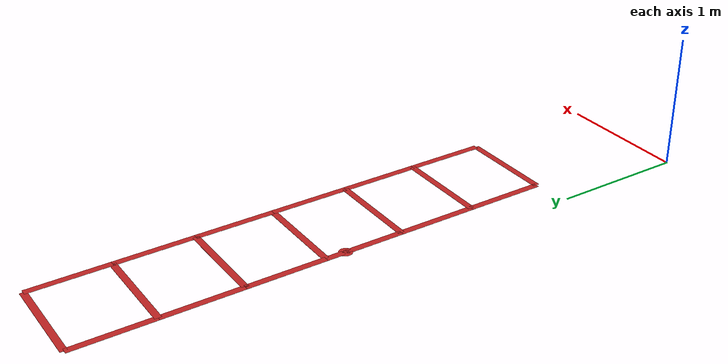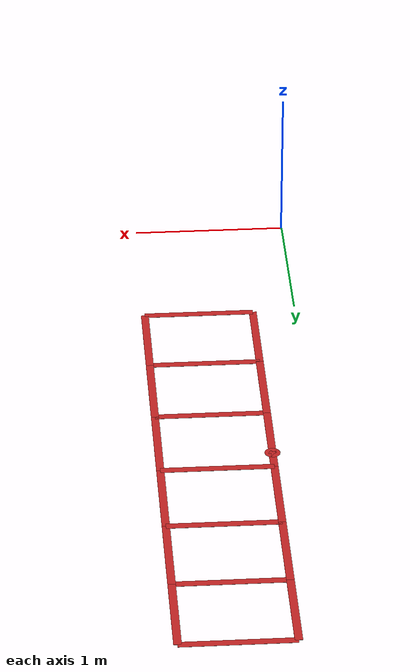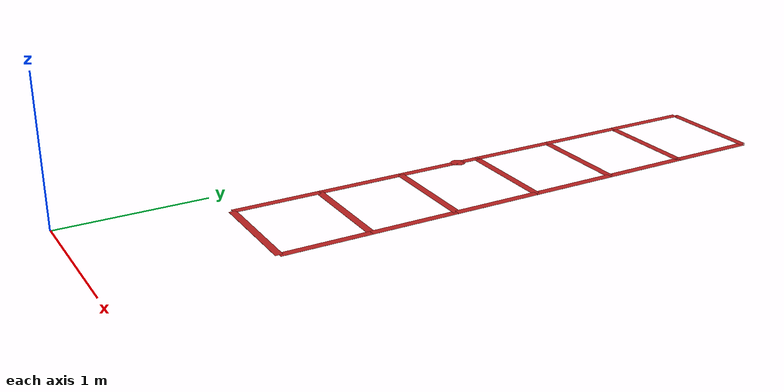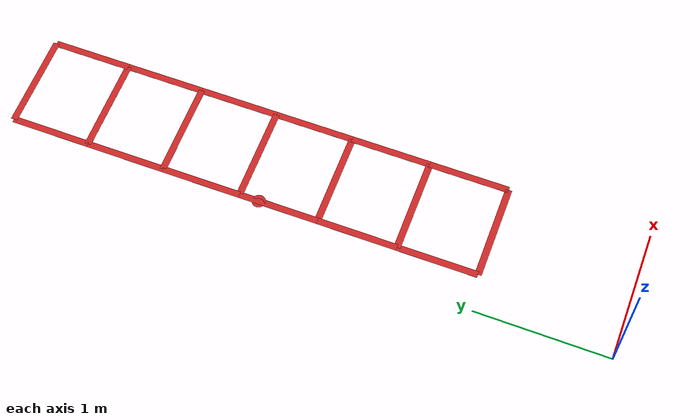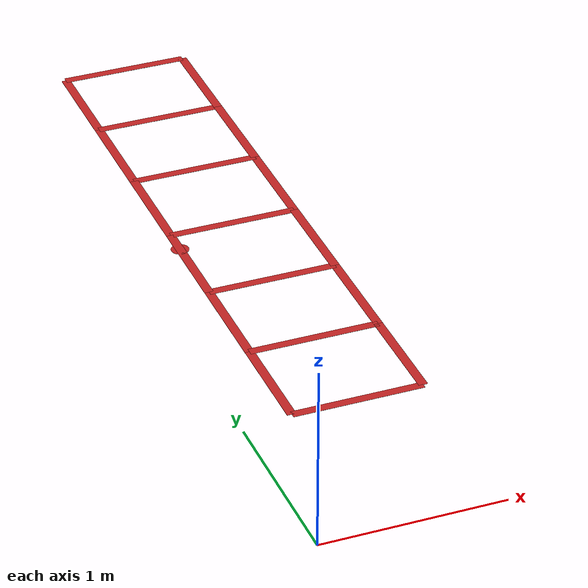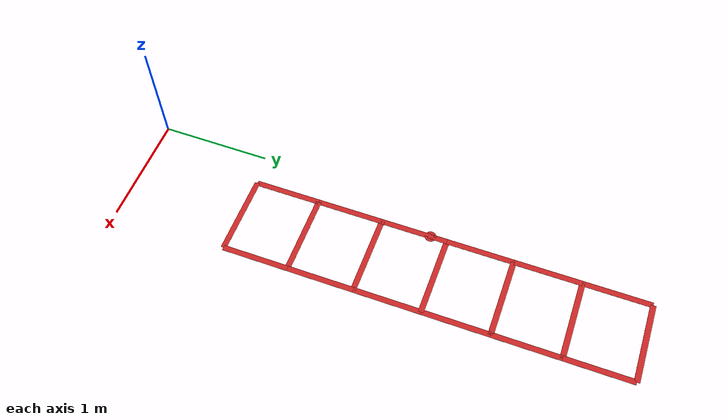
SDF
<sdf version="1.6">
 <world name="square_world">
  <model name="wall588">
   <static>1</static>
   <pose>0.64 1.05 0 0 -0 0</pose>
   <link name="wall_link">
    <inertial><mass>10000</mass></inertial>
    <collision name="wall_collision">
     <geometry><box><size>0.72 0.05 0.001</size></box></geometry>
     <surface><contact><collide_bitmask>2</collide_bitmask></contact></surface>
    </collision>
    <visual name="wall_visual">
     <geometry><box><size>0.72 0.05 0.001</size></box></geometry>
     <material><script><name>Gazebo/Red</name><uri>__default__</uri></script></material>
    </visual>
   </link>
  </model>
  <model name="wall598">
   <static>1</static>
   <pose>0.64 1.65 0 0 -0 0</pose>
   <link name="wall_link">
    <inertial><mass>10000</mass></inertial>
    <collision name="wall_collision">
     <geometry><box><size>0.72 0.05 0.001</size></box></geometry>
     <surface><contact><collide_bitmask>2</collide_bitmask></contact></surface>
    </collision>
    <visual name="wall_visual">
     <geometry><box><size>0.72 0.05 0.001</size></box></geometry>
     <material><script><name>Gazebo/Red</name><uri>__default__</uri></script></material>
    </visual>
   </link>
  </model>
  <model name="wall608">
   <static>1</static>
   <pose>0.28 1.35 0 0 0 -1.5708</pose>
   <link name="wall_link">
    <inertial><mass>10000</mass></inertial>
    <collision name="wall_collision">
     <geometry><box><size>0.6 0.05 0.001</size></box></geometry>
     <surface><contact><collide_bitmask>2</collide_bitmask></contact></surface>
    </collision>
    <visual name="wall_visual">
     <geometry><box><size>0.6 0.05 0.001</size></box></geometry>
     <material><script><name>Gazebo/Red</name><uri>__default__</uri></script></material>
    </visual>
   </link>
  </model>
  <model name="wall618">
   <static>1</static>
   <pose>1 1.35 0 0 0 -1.5708</pose>
   <link name="wall_link">
    <inertial><mass>10000</mass></inertial>
    <collision name="wall_collision">
     <geometry><box><size>0.6 0.05 0.001</size></box></geometry>
     <surface><contact><collide_bitmask>2</collide_bitmask></contact></surface>
    </collision>
    <visual name="wall_visual">
     <geometry><box><size>0.6 0.05 0.001</size></box></geometry>
     <material><script><name>Gazebo/Red</name><uri>__default__</uri></script></material>
    </visual>
   </link>
  </model>
  <model name="wall638">
   <static>1</static>
   <pose>0.64 2.25 0 0 -0 0</pose>
   <link name="wall_link">
    <inertial><mass>10000</mass></inertial>
    <collision name="wall_collision">
     <geometry><box><size>0.72 0.05 0.001</size></box></geometry>
     <surface><contact><collide_bitmask>2</collide_bitmask></contact></surface>
    </collision>
    <visual name="wall_visual">
     <geometry><box><size>0.72 0.05 0.001</size></box></geometry>
     <material><script><name>Gazebo/Red</name><uri>__default__</uri></script></material>
    </visual>
   </link>
  </model>
  <model name="wall648">
   <static>1</static>
   <pose>0.28 1.95 0 0 0 -1.5708</pose>
   <link name="wall_link">
    <inertial><mass>10000</mass></inertial>
    <collision name="wall_collision">
     <geometry><box><size>0.6 0.05 0.001</size></box></geometry>
     <surface><contact><collide_bitmask>2</collide_bitmask></contact></surface>
    </collision>
    <visual name="wall_visual">
     <geometry><box><size>0.6 0.05 0.001</size></box></geometry>
     <material><script><name>Gazebo/Red</name><uri>__default__</uri></script></material>
    </visual>
   </link>
  </model>
  <model name="wall658">
   <static>1</static>
   <pose>1 1.95 0 0 0 -1.5708</pose>
   <link name="wall_link">
    <inertial><mass>10000</mass></inertial>
    <collision name="wall_collision">
     <geometry><box><size>0.6 0.05 0.001</size></box></geometry>
     <surface><contact><collide_bitmask>2</collide_bitmask></contact></surface>
    </collision>
    <visual name="wall_visual">
     <geometry><box><size>0.6 0.05 0.001</size></box></geometry>
     <material><script><name>Gazebo/Red</name><uri>__default__</uri></script></material>
    </visual>
   </link>
  </model>
  <model name="wall678">
   <static>1</static>
   <pose>0.64 2.85 0 0 -0 0</pose>
   <link name="wall_link">
    <inertial><mass>10000</mass></inertial>
    <collision name="wall_collision">
     <geometry><box><size>0.72 0.05 0.001</size></box></geometry>
     <surface><contact><collide_bitmask>2</collide_bitmask></contact></surface>
    </collision>
    <visual name="wall_visual">
     <geometry><box><size>0.72 0.05 0.001</size></box></geometry>
     <material><script><name>Gazebo/Red</name><uri>__default__</uri></script></material>
    </visual>
   </link>
  </model>
  <model name="wall688">
   <static>1</static>
   <pose>0.28 2.55 0 0 0 -1.5708</pose>
   <link name="wall_link">
    <inertial><mass>10000</mass></inertial>
    <collision name="wall_collision">
     <geometry><box><size>0.6 0.05 0.001</size></box></geometry>
     <surface><contact><collide_bitmask>2</collide_bitmask></contact></surface>
    </collision>
    <visual name="wall_visual">
     <geometry><box><size>0.6 0.05 0.001</size></box></geometry>
     <material><script><name>Gazebo/Red</name><uri>__default__</uri></script></material>
    </visual>
   </link>
  </model>
  <model name="wall698">
   <static>1</static>
   <pose>1 2.55 0 0 0 -1.5708</pose>
   <link name="wall_link">
    <inertial><mass>10000</mass></inertial>
    <collision name="wall_collision">
     <geometry><box><size>0.6 0.05 0.001</size></box></geometry>
     <surface><contact><collide_bitmask>2</collide_bitmask></contact></surface>
    </collision>
    <visual name="wall_visual">
     <geometry><box><size>0.6 0.05 0.001</size></box></geometry>
     <material><script><name>Gazebo/Red</name><uri>__default__</uri></script></material>
    </visual>
   </link>
  </model>
  <model name="wall718">
   <static>1</static>
   <pose>0.64 3.45 0 0 -0 0</pose>
   <link name="wall_link">
    <inertial><mass>10000</mass></inertial>
    <collision name="wall_collision">
     <geometry><box><size>0.72 0.05 0.001</size></box></geometry>
     <surface><contact><collide_bitmask>2</collide_bitmask></contact></surface>
    </collision>
    <visual name="wall_visual">
     <geometry><box><size>0.72 0.05 0.001</size></box></geometry>
     <material><script><name>Gazebo/Red</name><uri>__default__</uri></script></material>
    </visual>
   </link>
  </model>
  <model name="wall728">
   <static>1</static>
   <pose>0.28 3.15 0 0 0 -1.5708</pose>
   <link name="wall_link">
    <inertial><mass>10000</mass></inertial>
    <collision name="wall_collision">
     <geometry><box><size>0.6 0.05 0.001</size></box></geometry>
     <surface><contact><collide_bitmask>2</collide_bitmask></contact></surface>
    </collision>
    <visual name="wall_visual">
     <geometry><box><size>0.6 0.05 0.001</size></box></geometry>
     <material><script><name>Gazebo/Red</name><uri>__default__</uri></script></material>
    </visual>
   </link>
  </model>
  <model name="wall738">
   <static>1</static>
   <pose>1 3.15 0 0 0 -1.5708</pose>
   <link name="wall_link">
    <inertial><mass>10000</mass></inertial>
    <collision name="wall_collision">
     <geometry><box><size>0.6 0.05 0.001</size></box></geometry>
     <surface><contact><collide_bitmask>2</collide_bitmask></contact></surface>
    </collision>
    <visual name="wall_visual">
     <geometry><box><size>0.6 0.05 0.001</size></box></geometry>
     <material><script><name>Gazebo/Red</name><uri>__default__</uri></script></material>
    </visual>
   </link>
  </model>
  <model name="wall748">
   <static>1</static>
   <pose>0.64 4.05 0 0 -0 0</pose>
   <link name="wall_link">
    <inertial><mass>10000</mass></inertial>
    <collision name="wall_collision">
     <geometry><box><size>0.72 0.05 0.001</size></box></geometry>
     <surface><contact><collide_bitmask>2</collide_bitmask></contact></surface>
    </collision>
    <visual name="wall_visual">
     <geometry><box><size>0.72 0.05 0.001</size></box></geometry>
     <material><script><name>Gazebo/Red</name><uri>__default__</uri></script></material>
    </visual>
   </link>
  </model>
  <model name="wall758">
   <static>1</static>
   <pose>0.28 3.75 0 0 0 -1.5708</pose>
   <link name="wall_link">
    <inertial><mass>10000</mass></inertial>
    <collision name="wall_collision">
     <geometry><box><size>0.6 0.05 0.001</size></box></geometry>
     <surface><contact><collide_bitmask>2</collide_bitmask></contact></surface>
    </collision>
    <visual name="wall_visual">
     <geometry><box><size>0.6 0.05 0.001</size></box></geometry>
     <material><script><name>Gazebo/Red</name><uri>__default__</uri></script></material>
    </visual>
   </link>
  </model>
  <model name="wall768">
   <static>1</static>
   <pose>1 3.75 0 0 0 -1.5708</pose>
   <link name="wall_link">
    <inertial><mass>10000</mass></inertial>
    <collision name="wall_collision">
     <geometry><box><size>0.6 0.05 0.001</size></box></geometry>
     <surface><contact><collide_bitmask>2</collide_bitmask></contact></surface>
    </collision>
    <visual name="wall_visual">
     <geometry><box><size>0.6 0.05 0.001</size></box></geometry>
     <material><script><name>Gazebo/Red</name><uri>__default__</uri></script></material>
    </visual>
   </link>
  </model>
  <model name="wall778">
   <static>1</static>
   <pose>0.64 4.65 0 0 -0 0</pose>
   <link name="wall_link">
    <inertial><mass>10000</mass></inertial>
    <collision name="wall_collision">
     <geometry><box><size>0.72 0.05 0.001</size></box></geometry>
     <surface><contact><collide_bitmask>2</collide_bitmask></contact></surface>
    </collision>
    <visual name="wall_visual">
     <geometry><box><size>0.72 0.05 0.001</size></box></geometry>
     <material><script><name>Gazebo/Red</name><uri>__default__</uri></script></material>
    </visual>
   </link>
  </model>
  <model name="wall788">
   <static>1</static>
   <pose>0.28 4.35 0 0 0 -1.5708</pose>
   <link name="wall_link">
    <inertial><mass>10000</mass></inertial>
    <collision name="wall_collision">
     <geometry><box><size>0.6 0.05 0.001</size></box></geometry>
     <surface><contact><collide_bitmask>2</collide_bitmask></contact></surface>
    </collision>
    <visual name="wall_visual">
     <geometry><box><size>0.6 0.05 0.001</size></box></geometry>
     <material><script><name>Gazebo/Red</name><uri>__default__</uri></script></material>
    </visual>
   </link>
  </model>
  <model name="wall798">
   <static>1</static>
   <pose>1 4.35 0 0 0 -1.5708</pose>
   <link name="wall_link">
    <inertial><mass>10000</mass></inertial>
    <collision name="wall_collision">
     <geometry><box><size>0.6 0.05 0.001</size></box></geometry>
     <surface><contact><collide_bitmask>2</collide_bitmask></contact></surface>
    </collision>
    <visual name="wall_visual">
     <geometry><box><size>0.6 0.05 0.001</size></box></geometry>
     <material><script><name>Gazebo/Red</name><uri>__default__</uri></script></material>
    </visual>
   </link>
  </model>
  <model name="wall1038">
   <static>1</static>
   <pose>0.28 2.7 0 0 -0 0</pose>
   <link name="wall_link">
    <inertial><mass>10000</mass></inertial>
    <collision name="wall_collision">
     <geometry><cylinder><radius>0.05</radius><length>0.001</length></cylinder></geometry>
     <surface><contact><collide_bitmask>2</collide_bitmask></contact></surface>
    </collision>
    <visual name="wall_visual">
     <geometry><cylinder><radius>0.05</radius><length>0.001</length></cylinder></geometry>
     <material><script><name>Gazebo/Red</name><uri>__default__</uri></script></material>
    </visual>
   </link>
  </model>
 </world>
</sdf>
